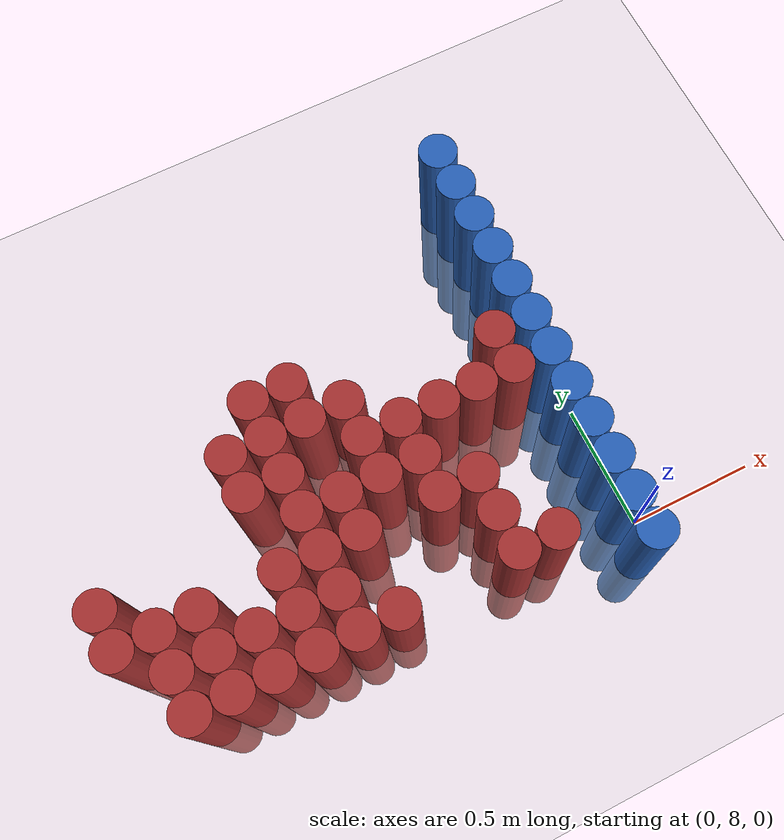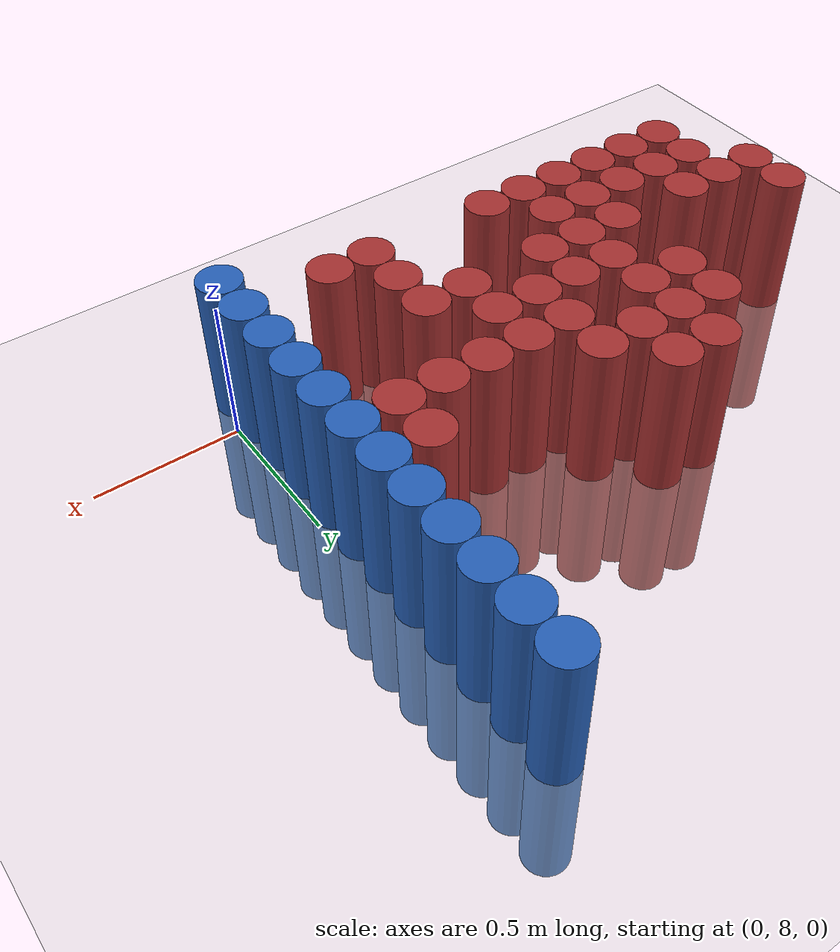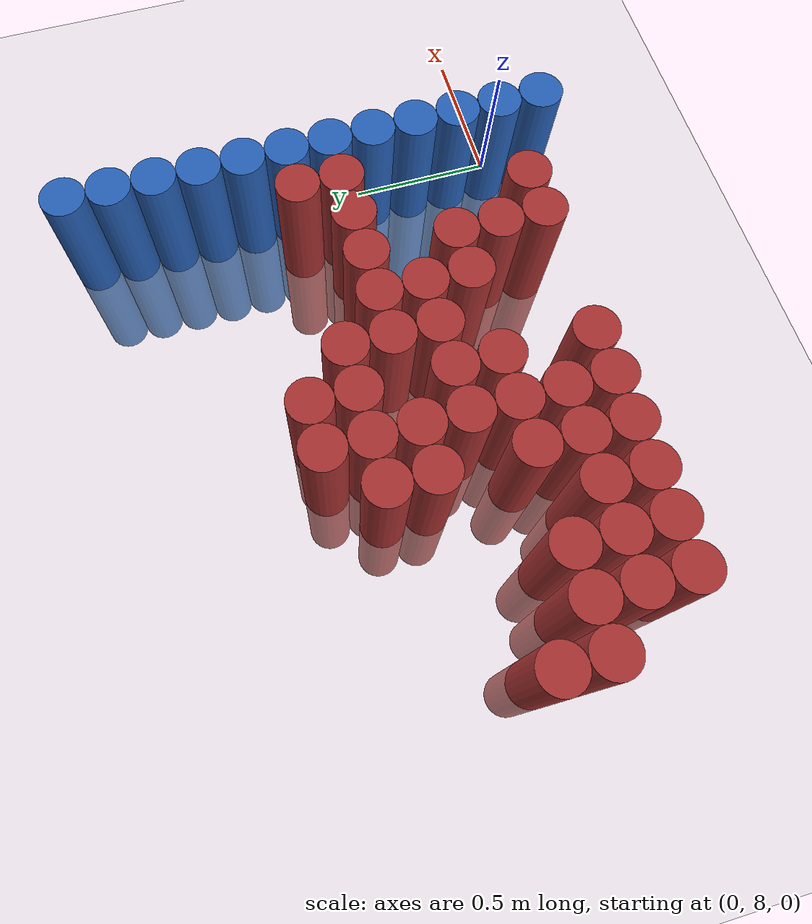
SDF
<sdf version="1.6">
 <world name="default">
  <model name="ground_plane">
   <static>1</static>
   <link name="link">
    <collision name="collision">
     <geometry><plane><normal>0 0 1</normal><size>100 100</size></plane></geometry>
     <surface><friction><ode><mu>100</mu><mu2>50</mu2></ode></friction></surface>
    </collision>
    <visual name="visual">
     <cast_shadows>0</cast_shadows>
     <geometry><plane><normal>0 0 1</normal><size>100 100</size></plane></geometry>
     <material>
      <script><uri>file://media/materials/scripts/gazebo.material</uri><name>Gazebo/Grey</name></script>
     </material>
    </visual>
   </link>
  </model>
  <model name="unit_cylinder_232">
   <static>1</static>
   <pose>-1.875000 8.325000 0.000000 0.000000 0.000000 0.000000</pose>
   <link name="link">
    <inertial>
     <mass>1</mass>
     <inertia><ixx>0.145833</ixx><ixy>0</ixy><ixz>0</ixz><iyy>0.145833</iyy><iyz>0</iyz><izz>0.125</izz></inertia>
    </inertial>
    <collision name="collision">
     <geometry><cylinder><radius>0.075000</radius><length>1</length></cylinder></geometry>
    </collision>
    <visual name="visual">
     <geometry><cylinder><radius>0.075000</radius><length>1</length></cylinder></geometry>
     <material>
      <ambient>0.648000 0.192000 0.192000 1</ambient>
      <diffuse>0.648000 0.192000 0.192000 1</diffuse>
     </material>
     <material>
      <script><name>Gazebo/Grey</name><uri>file://media/materials/scripts/gazebo.material</uri></script>
     </material>
    </visual>
   </link>
  </model>
  <model name="unit_cylinder_233">
   <static>1</static>
   <pose>-1.875000 8.475000 0.000000 0.000000 0.000000 0.000000</pose>
   <link name="link">
    <inertial>
     <mass>1</mass>
     <inertia><ixx>0.145833</ixx><ixy>0</ixy><ixz>0</ixz><iyy>0.145833</iyy><iyz>0</iyz><izz>0.125</izz></inertia>
    </inertial>
    <collision name="collision">
     <geometry><cylinder><radius>0.075000</radius><length>1</length></cylinder></geometry>
    </collision>
    <visual name="visual">
     <geometry><cylinder><radius>0.075000</radius><length>1</length></cylinder></geometry>
     <material>
      <ambient>0.648000 0.192000 0.192000 1</ambient>
      <diffuse>0.648000 0.192000 0.192000 1</diffuse>
     </material>
     <material>
      <script><name>Gazebo/Grey</name><uri>file://media/materials/scripts/gazebo.material</uri></script>
     </material>
    </visual>
   </link>
  </model>
  <model name="unit_cylinder_238">
   <static>1</static>
   <pose>-1.725000 8.025000 0.000000 0.000000 0.000000 0.000000</pose>
   <link name="link">
    <inertial>
     <mass>1</mass>
     <inertia><ixx>0.145833</ixx><ixy>0</ixy><ixz>0</ixz><iyy>0.145833</iyy><iyz>0</iyz><izz>0.125</izz></inertia>
    </inertial>
    <collision name="collision">
     <geometry><cylinder><radius>0.075000</radius><length>1</length></cylinder></geometry>
    </collision>
    <visual name="visual">
     <geometry><cylinder><radius>0.075000</radius><length>1</length></cylinder></geometry>
     <material>
      <ambient>0.648000 0.192000 0.192000 1</ambient>
      <diffuse>0.648000 0.192000 0.192000 1</diffuse>
     </material>
     <material>
      <script><name>Gazebo/Grey</name><uri>file://media/materials/scripts/gazebo.material</uri></script>
     </material>
    </visual>
   </link>
  </model>
  <model name="unit_cylinder_239">
   <static>1</static>
   <pose>-1.725000 8.175000 0.000000 0.000000 0.000000 0.000000</pose>
   <link name="link">
    <inertial>
     <mass>1</mass>
     <inertia><ixx>0.145833</ixx><ixy>0</ixy><ixz>0</ixz><iyy>0.145833</iyy><iyz>0</iyz><izz>0.125</izz></inertia>
    </inertial>
    <collision name="collision">
     <geometry><cylinder><radius>0.075000</radius><length>1</length></cylinder></geometry>
    </collision>
    <visual name="visual">
     <geometry><cylinder><radius>0.075000</radius><length>1</length></cylinder></geometry>
     <material>
      <ambient>0.648000 0.192000 0.192000 1</ambient>
      <diffuse>0.648000 0.192000 0.192000 1</diffuse>
     </material>
     <material>
      <script><name>Gazebo/Grey</name><uri>file://media/materials/scripts/gazebo.material</uri></script>
     </material>
    </visual>
   </link>
  </model>
  <model name="unit_cylinder_240">
   <static>1</static>
   <pose>-1.725000 8.325000 0.000000 0.000000 0.000000 0.000000</pose>
   <link name="link">
    <inertial>
     <mass>1</mass>
     <inertia><ixx>0.145833</ixx><ixy>0</ixy><ixz>0</ixz><iyy>0.145833</iyy><iyz>0</iyz><izz>0.125</izz></inertia>
    </inertial>
    <collision name="collision">
     <geometry><cylinder><radius>0.075000</radius><length>1</length></cylinder></geometry>
    </collision>
    <visual name="visual">
     <geometry><cylinder><radius>0.075000</radius><length>1</length></cylinder></geometry>
     <material>
      <ambient>0.648000 0.192000 0.192000 1</ambient>
      <diffuse>0.648000 0.192000 0.192000 1</diffuse>
     </material>
     <material>
      <script><name>Gazebo/Grey</name><uri>file://media/materials/scripts/gazebo.material</uri></script>
     </material>
    </visual>
   </link>
  </model>
  <model name="unit_cylinder_246">
   <static>1</static>
   <pose>-1.575000 8.025000 0.000000 0.000000 0.000000 0.000000</pose>
   <link name="link">
    <inertial>
     <mass>1</mass>
     <inertia><ixx>0.145833</ixx><ixy>0</ixy><ixz>0</ixz><iyy>0.145833</iyy><iyz>0</iyz><izz>0.125</izz></inertia>
    </inertial>
    <collision name="collision">
     <geometry><cylinder><radius>0.075000</radius><length>1</length></cylinder></geometry>
    </collision>
    <visual name="visual">
     <geometry><cylinder><radius>0.075000</radius><length>1</length></cylinder></geometry>
     <material>
      <ambient>0.648000 0.192000 0.192000 1</ambient>
      <diffuse>0.648000 0.192000 0.192000 1</diffuse>
     </material>
     <material>
      <script><name>Gazebo/Grey</name><uri>file://media/materials/scripts/gazebo.material</uri></script>
     </material>
    </visual>
   </link>
  </model>
  <model name="unit_cylinder_247">
   <static>1</static>
   <pose>-1.575000 8.175000 0.000000 0.000000 0.000000 0.000000</pose>
   <link name="link">
    <inertial>
     <mass>1</mass>
     <inertia><ixx>0.145833</ixx><ixy>0</ixy><ixz>0</ixz><iyy>0.145833</iyy><iyz>0</iyz><izz>0.125</izz></inertia>
    </inertial>
    <collision name="collision">
     <geometry><cylinder><radius>0.075000</radius><length>1</length></cylinder></geometry>
    </collision>
    <visual name="visual">
     <geometry><cylinder><radius>0.075000</radius><length>1</length></cylinder></geometry>
     <material>
      <ambient>0.648000 0.192000 0.192000 1</ambient>
      <diffuse>0.648000 0.192000 0.192000 1</diffuse>
     </material>
     <material>
      <script><name>Gazebo/Grey</name><uri>file://media/materials/scripts/gazebo.material</uri></script>
     </material>
    </visual>
   </link>
  </model>
  <model name="unit_cylinder_248">
   <static>1</static>
   <pose>-1.575000 8.325000 0.000000 0.000000 0.000000 0.000000</pose>
   <link name="link">
    <inertial>
     <mass>1</mass>
     <inertia><ixx>0.145833</ixx><ixy>0</ixy><ixz>0</ixz><iyy>0.145833</iyy><iyz>0</iyz><izz>0.125</izz></inertia>
    </inertial>
    <collision name="collision">
     <geometry><cylinder><radius>0.075000</radius><length>1</length></cylinder></geometry>
    </collision>
    <visual name="visual">
     <geometry><cylinder><radius>0.075000</radius><length>1</length></cylinder></geometry>
     <material>
      <ambient>0.648000 0.192000 0.192000 1</ambient>
      <diffuse>0.648000 0.192000 0.192000 1</diffuse>
     </material>
     <material>
      <script><name>Gazebo/Grey</name><uri>file://media/materials/scripts/gazebo.material</uri></script>
     </material>
    </visual>
   </link>
  </model>
  <model name="unit_cylinder_255">
   <static>1</static>
   <pose>-1.425000 8.025000 0.000000 0.000000 0.000000 0.000000</pose>
   <link name="link">
    <inertial>
     <mass>1</mass>
     <inertia><ixx>0.145833</ixx><ixy>0</ixy><ixz>0</ixz><iyy>0.145833</iyy><iyz>0</iyz><izz>0.125</izz></inertia>
    </inertial>
    <collision name="collision">
     <geometry><cylinder><radius>0.075000</radius><length>1</length></cylinder></geometry>
    </collision>
    <visual name="visual">
     <geometry><cylinder><radius>0.075000</radius><length>1</length></cylinder></geometry>
     <material>
      <ambient>0.648000 0.192000 0.192000 1</ambient>
      <diffuse>0.648000 0.192000 0.192000 1</diffuse>
     </material>
     <material>
      <script><name>Gazebo/Grey</name><uri>file://media/materials/scripts/gazebo.material</uri></script>
     </material>
    </visual>
   </link>
  </model>
  <model name="unit_cylinder_256">
   <static>1</static>
   <pose>-1.425000 8.175000 0.000000 0.000000 0.000000 0.000000</pose>
   <link name="link">
    <inertial>
     <mass>1</mass>
     <inertia><ixx>0.145833</ixx><ixy>0</ixy><ixz>0</ixz><iyy>0.145833</iyy><iyz>0</iyz><izz>0.125</izz></inertia>
    </inertial>
    <collision name="collision">
     <geometry><cylinder><radius>0.075000</radius><length>1</length></cylinder></geometry>
    </collision>
    <visual name="visual">
     <geometry><cylinder><radius>0.075000</radius><length>1</length></cylinder></geometry>
     <material>
      <ambient>0.648000 0.192000 0.192000 1</ambient>
      <diffuse>0.648000 0.192000 0.192000 1</diffuse>
     </material>
     <material>
      <script><name>Gazebo/Grey</name><uri>file://media/materials/scripts/gazebo.material</uri></script>
     </material>
    </visual>
   </link>
  </model>
  <model name="unit_cylinder_264">
   <static>1</static>
   <pose>-1.275000 8.025000 0.000000 0.000000 0.000000 0.000000</pose>
   <link name="link">
    <inertial>
     <mass>1</mass>
     <inertia><ixx>0.145833</ixx><ixy>0</ixy><ixz>0</ixz><iyy>0.145833</iyy><iyz>0</iyz><izz>0.125</izz></inertia>
    </inertial>
    <collision name="collision">
     <geometry><cylinder><radius>0.075000</radius><length>1</length></cylinder></geometry>
    </collision>
    <visual name="visual">
     <geometry><cylinder><radius>0.075000</radius><length>1</length></cylinder></geometry>
     <material>
      <ambient>0.648000 0.192000 0.192000 1</ambient>
      <diffuse>0.648000 0.192000 0.192000 1</diffuse>
     </material>
     <material>
      <script><name>Gazebo/Grey</name><uri>file://media/materials/scripts/gazebo.material</uri></script>
     </material>
    </visual>
   </link>
  </model>
  <model name="unit_cylinder_265">
   <static>1</static>
   <pose>-1.275000 8.175000 0.000000 0.000000 0.000000 0.000000</pose>
   <link name="link">
    <inertial>
     <mass>1</mass>
     <inertia><ixx>0.145833</ixx><ixy>0</ixy><ixz>0</ixz><iyy>0.145833</iyy><iyz>0</iyz><izz>0.125</izz></inertia>
    </inertial>
    <collision name="collision">
     <geometry><cylinder><radius>0.075000</radius><length>1</length></cylinder></geometry>
    </collision>
    <visual name="visual">
     <geometry><cylinder><radius>0.075000</radius><length>1</length></cylinder></geometry>
     <material>
      <ambient>0.648000 0.192000 0.192000 1</ambient>
      <diffuse>0.648000 0.192000 0.192000 1</diffuse>
     </material>
     <material>
      <script><name>Gazebo/Grey</name><uri>file://media/materials/scripts/gazebo.material</uri></script>
     </material>
    </visual>
   </link>
  </model>
  <model name="unit_cylinder_266">
   <static>1</static>
   <pose>-1.275000 8.325000 0.000000 0.000000 0.000000 0.000000</pose>
   <link name="link">
    <inertial>
     <mass>1</mass>
     <inertia><ixx>0.145833</ixx><ixy>0</ixy><ixz>0</ixz><iyy>0.145833</iyy><iyz>0</iyz><izz>0.125</izz></inertia>
    </inertial>
    <collision name="collision">
     <geometry><cylinder><radius>0.075000</radius><length>1</length></cylinder></geometry>
    </collision>
    <visual name="visual">
     <geometry><cylinder><radius>0.075000</radius><length>1</length></cylinder></geometry>
     <material>
      <ambient>0.648000 0.192000 0.192000 1</ambient>
      <diffuse>0.648000 0.192000 0.192000 1</diffuse>
     </material>
     <material>
      <script><name>Gazebo/Grey</name><uri>file://media/materials/scripts/gazebo.material</uri></script>
     </material>
    </visual>
   </link>
  </model>
  <model name="unit_cylinder_267">
   <static>1</static>
   <pose>-1.275000 8.625000 0.000000 0.000000 0.000000 0.000000</pose>
   <link name="link">
    <inertial>
     <mass>1</mass>
     <inertia><ixx>0.145833</ixx><ixy>0</ixy><ixz>0</ixz><iyy>0.145833</iyy><iyz>0</iyz><izz>0.125</izz></inertia>
    </inertial>
    <collision name="collision">
     <geometry><cylinder><radius>0.075000</radius><length>1</length></cylinder></geometry>
    </collision>
    <visual name="visual">
     <geometry><cylinder><radius>0.075000</radius><length>1</length></cylinder></geometry>
     <material>
      <ambient>0.648000 0.192000 0.192000 1</ambient>
      <diffuse>0.648000 0.192000 0.192000 1</diffuse>
     </material>
     <material>
      <script><name>Gazebo/Grey</name><uri>file://media/materials/scripts/gazebo.material</uri></script>
     </material>
    </visual>
   </link>
  </model>
  <model name="unit_cylinder_268">
   <static>1</static>
   <pose>-1.275000 8.775000 0.000000 0.000000 0.000000 0.000000</pose>
   <link name="link">
    <inertial>
     <mass>1</mass>
     <inertia><ixx>0.145833</ixx><ixy>0</ixy><ixz>0</ixz><iyy>0.145833</iyy><iyz>0</iyz><izz>0.125</izz></inertia>
    </inertial>
    <collision name="collision">
     <geometry><cylinder><radius>0.075000</radius><length>1</length></cylinder></geometry>
    </collision>
    <visual name="visual">
     <geometry><cylinder><radius>0.075000</radius><length>1</length></cylinder></geometry>
     <material>
      <ambient>0.648000 0.192000 0.192000 1</ambient>
      <diffuse>0.648000 0.192000 0.192000 1</diffuse>
     </material>
     <material>
      <script><name>Gazebo/Grey</name><uri>file://media/materials/scripts/gazebo.material</uri></script>
     </material>
    </visual>
   </link>
  </model>
  <model name="unit_cylinder_276">
   <static>1</static>
   <pose>-1.125000 8.025000 0.000000 0.000000 0.000000 0.000000</pose>
   <link name="link">
    <inertial>
     <mass>1</mass>
     <inertia><ixx>0.145833</ixx><ixy>0</ixy><ixz>0</ixz><iyy>0.145833</iyy><iyz>0</iyz><izz>0.125</izz></inertia>
    </inertial>
    <collision name="collision">
     <geometry><cylinder><radius>0.075000</radius><length>1</length></cylinder></geometry>
    </collision>
    <visual name="visual">
     <geometry><cylinder><radius>0.075000</radius><length>1</length></cylinder></geometry>
     <material>
      <ambient>0.648000 0.192000 0.192000 1</ambient>
      <diffuse>0.648000 0.192000 0.192000 1</diffuse>
     </material>
     <material>
      <script><name>Gazebo/Grey</name><uri>file://media/materials/scripts/gazebo.material</uri></script>
     </material>
    </visual>
   </link>
  </model>
  <model name="unit_cylinder_277">
   <static>1</static>
   <pose>-1.125000 8.175000 0.000000 0.000000 0.000000 0.000000</pose>
   <link name="link">
    <inertial>
     <mass>1</mass>
     <inertia><ixx>0.145833</ixx><ixy>0</ixy><ixz>0</ixz><iyy>0.145833</iyy><iyz>0</iyz><izz>0.125</izz></inertia>
    </inertial>
    <collision name="collision">
     <geometry><cylinder><radius>0.075000</radius><length>1</length></cylinder></geometry>
    </collision>
    <visual name="visual">
     <geometry><cylinder><radius>0.075000</radius><length>1</length></cylinder></geometry>
     <material>
      <ambient>0.648000 0.192000 0.192000 1</ambient>
      <diffuse>0.648000 0.192000 0.192000 1</diffuse>
     </material>
     <material>
      <script><name>Gazebo/Grey</name><uri>file://media/materials/scripts/gazebo.material</uri></script>
     </material>
    </visual>
   </link>
  </model>
  <model name="unit_cylinder_278">
   <static>1</static>
   <pose>-1.125000 8.325000 0.000000 0.000000 0.000000 0.000000</pose>
   <link name="link">
    <inertial>
     <mass>1</mass>
     <inertia><ixx>0.145833</ixx><ixy>0</ixy><ixz>0</ixz><iyy>0.145833</iyy><iyz>0</iyz><izz>0.125</izz></inertia>
    </inertial>
    <collision name="collision">
     <geometry><cylinder><radius>0.075000</radius><length>1</length></cylinder></geometry>
    </collision>
    <visual name="visual">
     <geometry><cylinder><radius>0.075000</radius><length>1</length></cylinder></geometry>
     <material>
      <ambient>0.648000 0.192000 0.192000 1</ambient>
      <diffuse>0.648000 0.192000 0.192000 1</diffuse>
     </material>
     <material>
      <script><name>Gazebo/Grey</name><uri>file://media/materials/scripts/gazebo.material</uri></script>
     </material>
    </visual>
   </link>
  </model>
  <model name="unit_cylinder_279">
   <static>1</static>
   <pose>-1.125000 8.475000 0.000000 0.000000 0.000000 0.000000</pose>
   <link name="link">
    <inertial>
     <mass>1</mass>
     <inertia><ixx>0.145833</ixx><ixy>0</ixy><ixz>0</ixz><iyy>0.145833</iyy><iyz>0</iyz><izz>0.125</izz></inertia>
    </inertial>
    <collision name="collision">
     <geometry><cylinder><radius>0.075000</radius><length>1</length></cylinder></geometry>
    </collision>
    <visual name="visual">
     <geometry><cylinder><radius>0.075000</radius><length>1</length></cylinder></geometry>
     <material>
      <ambient>0.648000 0.192000 0.192000 1</ambient>
      <diffuse>0.648000 0.192000 0.192000 1</diffuse>
     </material>
     <material>
      <script><name>Gazebo/Grey</name><uri>file://media/materials/scripts/gazebo.material</uri></script>
     </material>
    </visual>
   </link>
  </model>
  <model name="unit_cylinder_280">
   <static>1</static>
   <pose>-1.125000 8.625000 0.000000 0.000000 0.000000 0.000000</pose>
   <link name="link">
    <inertial>
     <mass>1</mass>
     <inertia><ixx>0.145833</ixx><ixy>0</ixy><ixz>0</ixz><iyy>0.145833</iyy><iyz>0</iyz><izz>0.125</izz></inertia>
    </inertial>
    <collision name="collision">
     <geometry><cylinder><radius>0.075000</radius><length>1</length></cylinder></geometry>
    </collision>
    <visual name="visual">
     <geometry><cylinder><radius>0.075000</radius><length>1</length></cylinder></geometry>
     <material>
      <ambient>0.648000 0.192000 0.192000 1</ambient>
      <diffuse>0.648000 0.192000 0.192000 1</diffuse>
     </material>
     <material>
      <script><name>Gazebo/Grey</name><uri>file://media/materials/scripts/gazebo.material</uri></script>
     </material>
    </visual>
   </link>
  </model>
  <model name="unit_cylinder_281">
   <static>1</static>
   <pose>-1.125000 8.775000 0.000000 0.000000 0.000000 0.000000</pose>
   <link name="link">
    <inertial>
     <mass>1</mass>
     <inertia><ixx>0.145833</ixx><ixy>0</ixy><ixz>0</ixz><iyy>0.145833</iyy><iyz>0</iyz><izz>0.125</izz></inertia>
    </inertial>
    <collision name="collision">
     <geometry><cylinder><radius>0.075000</radius><length>1</length></cylinder></geometry>
    </collision>
    <visual name="visual">
     <geometry><cylinder><radius>0.075000</radius><length>1</length></cylinder></geometry>
     <material>
      <ambient>0.648000 0.192000 0.192000 1</ambient>
      <diffuse>0.648000 0.192000 0.192000 1</diffuse>
     </material>
     <material>
      <script><name>Gazebo/Grey</name><uri>file://media/materials/scripts/gazebo.material</uri></script>
     </material>
    </visual>
   </link>
  </model>
  <model name="unit_cylinder_282">
   <static>1</static>
   <pose>-1.125000 8.925000 0.000000 0.000000 0.000000 0.000000</pose>
   <link name="link">
    <inertial>
     <mass>1</mass>
     <inertia><ixx>0.145833</ixx><ixy>0</ixy><ixz>0</ixz><iyy>0.145833</iyy><iyz>0</iyz><izz>0.125</izz></inertia>
    </inertial>
    <collision name="collision">
     <geometry><cylinder><radius>0.075000</radius><length>1</length></cylinder></geometry>
    </collision>
    <visual name="visual">
     <geometry><cylinder><radius>0.075000</radius><length>1</length></cylinder></geometry>
     <material>
      <ambient>0.648000 0.192000 0.192000 1</ambient>
      <diffuse>0.648000 0.192000 0.192000 1</diffuse>
     </material>
     <material>
      <script><name>Gazebo/Grey</name><uri>file://media/materials/scripts/gazebo.material</uri></script>
     </material>
    </visual>
   </link>
  </model>
  <model name="unit_cylinder_289">
   <static>1</static>
   <pose>-0.975000 8.025000 0.000000 0.000000 0.000000 0.000000</pose>
   <link name="link">
    <inertial>
     <mass>1</mass>
     <inertia><ixx>0.145833</ixx><ixy>0</ixy><ixz>0</ixz><iyy>0.145833</iyy><iyz>0</iyz><izz>0.125</izz></inertia>
    </inertial>
    <collision name="collision">
     <geometry><cylinder><radius>0.075000</radius><length>1</length></cylinder></geometry>
    </collision>
    <visual name="visual">
     <geometry><cylinder><radius>0.075000</radius><length>1</length></cylinder></geometry>
     <material>
      <ambient>0.648000 0.192000 0.192000 1</ambient>
      <diffuse>0.648000 0.192000 0.192000 1</diffuse>
     </material>
     <material>
      <script><name>Gazebo/Grey</name><uri>file://media/materials/scripts/gazebo.material</uri></script>
     </material>
    </visual>
   </link>
  </model>
  <model name="unit_cylinder_290">
   <static>1</static>
   <pose>-0.975000 8.325000 0.000000 0.000000 0.000000 0.000000</pose>
   <link name="link">
    <inertial>
     <mass>1</mass>
     <inertia><ixx>0.145833</ixx><ixy>0</ixy><ixz>0</ixz><iyy>0.145833</iyy><iyz>0</iyz><izz>0.125</izz></inertia>
    </inertial>
    <collision name="collision">
     <geometry><cylinder><radius>0.075000</radius><length>1</length></cylinder></geometry>
    </collision>
    <visual name="visual">
     <geometry><cylinder><radius>0.075000</radius><length>1</length></cylinder></geometry>
     <material>
      <ambient>0.648000 0.192000 0.192000 1</ambient>
      <diffuse>0.648000 0.192000 0.192000 1</diffuse>
     </material>
     <material>
      <script><name>Gazebo/Grey</name><uri>file://media/materials/scripts/gazebo.material</uri></script>
     </material>
    </visual>
   </link>
  </model>
  <model name="unit_cylinder_291">
   <static>1</static>
   <pose>-0.975000 8.475000 0.000000 0.000000 0.000000 0.000000</pose>
   <link name="link">
    <inertial>
     <mass>1</mass>
     <inertia><ixx>0.145833</ixx><ixy>0</ixy><ixz>0</ixz><iyy>0.145833</iyy><iyz>0</iyz><izz>0.125</izz></inertia>
    </inertial>
    <collision name="collision">
     <geometry><cylinder><radius>0.075000</radius><length>1</length></cylinder></geometry>
    </collision>
    <visual name="visual">
     <geometry><cylinder><radius>0.075000</radius><length>1</length></cylinder></geometry>
     <material>
      <ambient>0.648000 0.192000 0.192000 1</ambient>
      <diffuse>0.648000 0.192000 0.192000 1</diffuse>
     </material>
     <material>
      <script><name>Gazebo/Grey</name><uri>file://media/materials/scripts/gazebo.material</uri></script>
     </material>
    </visual>
   </link>
  </model>
  <model name="unit_cylinder_292">
   <static>1</static>
   <pose>-0.975000 8.775000 0.000000 0.000000 0.000000 0.000000</pose>
   <link name="link">
    <inertial>
     <mass>1</mass>
     <inertia><ixx>0.145833</ixx><ixy>0</ixy><ixz>0</ixz><iyy>0.145833</iyy><iyz>0</iyz><izz>0.125</izz></inertia>
    </inertial>
    <collision name="collision">
     <geometry><cylinder><radius>0.075000</radius><length>1</length></cylinder></geometry>
    </collision>
    <visual name="visual">
     <geometry><cylinder><radius>0.075000</radius><length>1</length></cylinder></geometry>
     <material>
      <ambient>0.648000 0.192000 0.192000 1</ambient>
      <diffuse>0.648000 0.192000 0.192000 1</diffuse>
     </material>
     <material>
      <script><name>Gazebo/Grey</name><uri>file://media/materials/scripts/gazebo.material</uri></script>
     </material>
    </visual>
   </link>
  </model>
  <model name="unit_cylinder_293">
   <static>1</static>
   <pose>-0.975000 8.925000 0.000000 0.000000 0.000000 0.000000</pose>
   <link name="link">
    <inertial>
     <mass>1</mass>
     <inertia><ixx>0.145833</ixx><ixy>0</ixy><ixz>0</ixz><iyy>0.145833</iyy><iyz>0</iyz><izz>0.125</izz></inertia>
    </inertial>
    <collision name="collision">
     <geometry><cylinder><radius>0.075000</radius><length>1</length></cylinder></geometry>
    </collision>
    <visual name="visual">
     <geometry><cylinder><radius>0.075000</radius><length>1</length></cylinder></geometry>
     <material>
      <ambient>0.648000 0.192000 0.192000 1</ambient>
      <diffuse>0.648000 0.192000 0.192000 1</diffuse>
     </material>
     <material>
      <script><name>Gazebo/Grey</name><uri>file://media/materials/scripts/gazebo.material</uri></script>
     </material>
    </visual>
   </link>
  </model>
  <model name="unit_cylinder_299">
   <static>1</static>
   <pose>-0.825000 8.475000 0.000000 0.000000 0.000000 0.000000</pose>
   <link name="link">
    <inertial>
     <mass>1</mass>
     <inertia><ixx>0.145833</ixx><ixy>0</ixy><ixz>0</ixz><iyy>0.145833</iyy><iyz>0</iyz><izz>0.125</izz></inertia>
    </inertial>
    <collision name="collision">
     <geometry><cylinder><radius>0.075000</radius><length>1</length></cylinder></geometry>
    </collision>
    <visual name="visual">
     <geometry><cylinder><radius>0.075000</radius><length>1</length></cylinder></geometry>
     <material>
      <ambient>0.648000 0.192000 0.192000 1</ambient>
      <diffuse>0.648000 0.192000 0.192000 1</diffuse>
     </material>
     <material>
      <script><name>Gazebo/Grey</name><uri>file://media/materials/scripts/gazebo.material</uri></script>
     </material>
    </visual>
   </link>
  </model>
  <model name="unit_cylinder_300">
   <static>1</static>
   <pose>-0.825000 8.625000 0.000000 0.000000 0.000000 0.000000</pose>
   <link name="link">
    <inertial>
     <mass>1</mass>
     <inertia><ixx>0.145833</ixx><ixy>0</ixy><ixz>0</ixz><iyy>0.145833</iyy><iyz>0</iyz><izz>0.125</izz></inertia>
    </inertial>
    <collision name="collision">
     <geometry><cylinder><radius>0.075000</radius><length>1</length></cylinder></geometry>
    </collision>
    <visual name="visual">
     <geometry><cylinder><radius>0.075000</radius><length>1</length></cylinder></geometry>
     <material>
      <ambient>0.648000 0.192000 0.192000 1</ambient>
      <diffuse>0.648000 0.192000 0.192000 1</diffuse>
     </material>
     <material>
      <script><name>Gazebo/Grey</name><uri>file://media/materials/scripts/gazebo.material</uri></script>
     </material>
    </visual>
   </link>
  </model>
  <model name="unit_cylinder_301">
   <static>1</static>
   <pose>-0.825000 8.775000 0.000000 0.000000 0.000000 0.000000</pose>
   <link name="link">
    <inertial>
     <mass>1</mass>
     <inertia><ixx>0.145833</ixx><ixy>0</ixy><ixz>0</ixz><iyy>0.145833</iyy><iyz>0</iyz><izz>0.125</izz></inertia>
    </inertial>
    <collision name="collision">
     <geometry><cylinder><radius>0.075000</radius><length>1</length></cylinder></geometry>
    </collision>
    <visual name="visual">
     <geometry><cylinder><radius>0.075000</radius><length>1</length></cylinder></geometry>
     <material>
      <ambient>0.648000 0.192000 0.192000 1</ambient>
      <diffuse>0.648000 0.192000 0.192000 1</diffuse>
     </material>
     <material>
      <script><name>Gazebo/Grey</name><uri>file://media/materials/scripts/gazebo.material</uri></script>
     </material>
    </visual>
   </link>
  </model>
  <model name="unit_cylinder_306">
   <static>1</static>
   <pose>-0.675000 8.325000 0.000000 0.000000 0.000000 0.000000</pose>
   <link name="link">
    <inertial>
     <mass>1</mass>
     <inertia><ixx>0.145833</ixx><ixy>0</ixy><ixz>0</ixz><iyy>0.145833</iyy><iyz>0</iyz><izz>0.125</izz></inertia>
    </inertial>
    <collision name="collision">
     <geometry><cylinder><radius>0.075000</radius><length>1</length></cylinder></geometry>
    </collision>
    <visual name="visual">
     <geometry><cylinder><radius>0.075000</radius><length>1</length></cylinder></geometry>
     <material>
      <ambient>0.648000 0.192000 0.192000 1</ambient>
      <diffuse>0.648000 0.192000 0.192000 1</diffuse>
     </material>
     <material>
      <script><name>Gazebo/Grey</name><uri>file://media/materials/scripts/gazebo.material</uri></script>
     </material>
    </visual>
   </link>
  </model>
  <model name="unit_cylinder_307">
   <static>1</static>
   <pose>-0.675000 8.475000 0.000000 0.000000 0.000000 0.000000</pose>
   <link name="link">
    <inertial>
     <mass>1</mass>
     <inertia><ixx>0.145833</ixx><ixy>0</ixy><ixz>0</ixz><iyy>0.145833</iyy><iyz>0</iyz><izz>0.125</izz></inertia>
    </inertial>
    <collision name="collision">
     <geometry><cylinder><radius>0.075000</radius><length>1</length></cylinder></geometry>
    </collision>
    <visual name="visual">
     <geometry><cylinder><radius>0.075000</radius><length>1</length></cylinder></geometry>
     <material>
      <ambient>0.648000 0.192000 0.192000 1</ambient>
      <diffuse>0.648000 0.192000 0.192000 1</diffuse>
     </material>
     <material>
      <script><name>Gazebo/Grey</name><uri>file://media/materials/scripts/gazebo.material</uri></script>
     </material>
    </visual>
   </link>
  </model>
  <model name="unit_cylinder_308">
   <static>1</static>
   <pose>-0.675000 8.625000 0.000000 0.000000 0.000000 0.000000</pose>
   <link name="link">
    <inertial>
     <mass>1</mass>
     <inertia><ixx>0.145833</ixx><ixy>0</ixy><ixz>0</ixz><iyy>0.145833</iyy><iyz>0</iyz><izz>0.125</izz></inertia>
    </inertial>
    <collision name="collision">
     <geometry><cylinder><radius>0.075000</radius><length>1</length></cylinder></geometry>
    </collision>
    <visual name="visual">
     <geometry><cylinder><radius>0.075000</radius><length>1</length></cylinder></geometry>
     <material>
      <ambient>0.648000 0.192000 0.192000 1</ambient>
      <diffuse>0.648000 0.192000 0.192000 1</diffuse>
     </material>
     <material>
      <script><name>Gazebo/Grey</name><uri>file://media/materials/scripts/gazebo.material</uri></script>
     </material>
    </visual>
   </link>
  </model>
  <model name="unit_cylinder_313">
   <static>1</static>
   <pose>-0.525000 8.025000 0.000000 0.000000 0.000000 0.000000</pose>
   <link name="link">
    <inertial>
     <mass>1</mass>
     <inertia><ixx>0.145833</ixx><ixy>0</ixy><ixz>0</ixz><iyy>0.145833</iyy><iyz>0</iyz><izz>0.125</izz></inertia>
    </inertial>
    <collision name="collision">
     <geometry><cylinder><radius>0.075000</radius><length>1</length></cylinder></geometry>
    </collision>
    <visual name="visual">
     <geometry><cylinder><radius>0.075000</radius><length>1</length></cylinder></geometry>
     <material>
      <ambient>0.648000 0.192000 0.192000 1</ambient>
      <diffuse>0.648000 0.192000 0.192000 1</diffuse>
     </material>
     <material>
      <script><name>Gazebo/Grey</name><uri>file://media/materials/scripts/gazebo.material</uri></script>
     </material>
    </visual>
   </link>
  </model>
  <model name="unit_cylinder_314">
   <static>1</static>
   <pose>-0.525000 8.175000 0.000000 0.000000 0.000000 0.000000</pose>
   <link name="link">
    <inertial>
     <mass>1</mass>
     <inertia><ixx>0.145833</ixx><ixy>0</ixy><ixz>0</ixz><iyy>0.145833</iyy><iyz>0</iyz><izz>0.125</izz></inertia>
    </inertial>
    <collision name="collision">
     <geometry><cylinder><radius>0.075000</radius><length>1</length></cylinder></geometry>
    </collision>
    <visual name="visual">
     <geometry><cylinder><radius>0.075000</radius><length>1</length></cylinder></geometry>
     <material>
      <ambient>0.648000 0.192000 0.192000 1</ambient>
      <diffuse>0.648000 0.192000 0.192000 1</diffuse>
     </material>
     <material>
      <script><name>Gazebo/Grey</name><uri>file://media/materials/scripts/gazebo.material</uri></script>
     </material>
    </visual>
   </link>
  </model>
  <model name="unit_cylinder_315">
   <static>1</static>
   <pose>-0.525000 8.325000 0.000000 0.000000 0.000000 0.000000</pose>
   <link name="link">
    <inertial>
     <mass>1</mass>
     <inertia><ixx>0.145833</ixx><ixy>0</ixy><ixz>0</ixz><iyy>0.145833</iyy><iyz>0</iyz><izz>0.125</izz></inertia>
    </inertial>
    <collision name="collision">
     <geometry><cylinder><radius>0.075000</radius><length>1</length></cylinder></geometry>
    </collision>
    <visual name="visual">
     <geometry><cylinder><radius>0.075000</radius><length>1</length></cylinder></geometry>
     <material>
      <ambient>0.648000 0.192000 0.192000 1</ambient>
      <diffuse>0.648000 0.192000 0.192000 1</diffuse>
     </material>
     <material>
      <script><name>Gazebo/Grey</name><uri>file://media/materials/scripts/gazebo.material</uri></script>
     </material>
    </visual>
   </link>
  </model>
  <model name="unit_cylinder_316">
   <static>1</static>
   <pose>-0.525000 8.625000 0.000000 0.000000 0.000000 0.000000</pose>
   <link name="link">
    <inertial>
     <mass>1</mass>
     <inertia><ixx>0.145833</ixx><ixy>0</ixy><ixz>0</ixz><iyy>0.145833</iyy><iyz>0</iyz><izz>0.125</izz></inertia>
    </inertial>
    <collision name="collision">
     <geometry><cylinder><radius>0.075000</radius><length>1</length></cylinder></geometry>
    </collision>
    <visual name="visual">
     <geometry><cylinder><radius>0.075000</radius><length>1</length></cylinder></geometry>
     <material>
      <ambient>0.648000 0.192000 0.192000 1</ambient>
      <diffuse>0.648000 0.192000 0.192000 1</diffuse>
     </material>
     <material>
      <script><name>Gazebo/Grey</name><uri>file://media/materials/scripts/gazebo.material</uri></script>
     </material>
    </visual>
   </link>
  </model>
  <model name="unit_cylinder_323">
   <static>1</static>
   <pose>-0.375000 8.025000 0.000000 0.000000 0.000000 0.000000</pose>
   <link name="link">
    <inertial>
     <mass>1</mass>
     <inertia><ixx>0.145833</ixx><ixy>0</ixy><ixz>0</ixz><iyy>0.145833</iyy><iyz>0</iyz><izz>0.125</izz></inertia>
    </inertial>
    <collision name="collision">
     <geometry><cylinder><radius>0.075000</radius><length>1</length></cylinder></geometry>
    </collision>
    <visual name="visual">
     <geometry><cylinder><radius>0.075000</radius><length>1</length></cylinder></geometry>
     <material>
      <ambient>0.648000 0.192000 0.192000 1</ambient>
      <diffuse>0.648000 0.192000 0.192000 1</diffuse>
     </material>
     <material>
      <script><name>Gazebo/Grey</name><uri>file://media/materials/scripts/gazebo.material</uri></script>
     </material>
    </visual>
   </link>
  </model>
  <model name="unit_cylinder_324">
   <static>1</static>
   <pose>-0.375000 8.625000 0.000000 0.000000 0.000000 0.000000</pose>
   <link name="link">
    <inertial>
     <mass>1</mass>
     <inertia><ixx>0.145833</ixx><ixy>0</ixy><ixz>0</ixz><iyy>0.145833</iyy><iyz>0</iyz><izz>0.125</izz></inertia>
    </inertial>
    <collision name="collision">
     <geometry><cylinder><radius>0.075000</radius><length>1</length></cylinder></geometry>
    </collision>
    <visual name="visual">
     <geometry><cylinder><radius>0.075000</radius><length>1</length></cylinder></geometry>
     <material>
      <ambient>0.648000 0.192000 0.192000 1</ambient>
      <diffuse>0.648000 0.192000 0.192000 1</diffuse>
     </material>
     <material>
      <script><name>Gazebo/Grey</name><uri>file://media/materials/scripts/gazebo.material</uri></script>
     </material>
    </visual>
   </link>
  </model>
  <model name="unit_cylinder_334">
   <static>1</static>
   <pose>-0.225000 8.625000 0.000000 0.000000 0.000000 0.000000</pose>
   <link name="link">
    <inertial>
     <mass>1</mass>
     <inertia><ixx>0.145833</ixx><ixy>0</ixy><ixz>0</ixz><iyy>0.145833</iyy><iyz>0</iyz><izz>0.125</izz></inertia>
    </inertial>
    <collision name="collision">
     <geometry><cylinder><radius>0.075000</radius><length>1</length></cylinder></geometry>
    </collision>
    <visual name="visual">
     <geometry><cylinder><radius>0.075000</radius><length>1</length></cylinder></geometry>
     <material>
      <ambient>0.648000 0.192000 0.192000 1</ambient>
      <diffuse>0.648000 0.192000 0.192000 1</diffuse>
     </material>
     <material>
      <script><name>Gazebo/Grey</name><uri>file://media/materials/scripts/gazebo.material</uri></script>
     </material>
    </visual>
   </link>
  </model>
  <model name="unit_cylinder_335">
   <static>1</static>
   <pose>-0.225000 8.775000 0.000000 0.000000 0.000000 0.000000</pose>
   <link name="link">
    <inertial>
     <mass>1</mass>
     <inertia><ixx>0.145833</ixx><ixy>0</ixy><ixz>0</ixz><iyy>0.145833</iyy><iyz>0</iyz><izz>0.125</izz></inertia>
    </inertial>
    <collision name="collision">
     <geometry><cylinder><radius>0.075000</radius><length>1</length></cylinder></geometry>
    </collision>
    <visual name="visual">
     <geometry><cylinder><radius>0.075000</radius><length>1</length></cylinder></geometry>
     <material>
      <ambient>0.648000 0.192000 0.192000 1</ambient>
      <diffuse>0.648000 0.192000 0.192000 1</diffuse>
     </material>
     <material>
      <script><name>Gazebo/Grey</name><uri>file://media/materials/scripts/gazebo.material</uri></script>
     </material>
    </visual>
   </link>
  </model>
  <model name="unit_cylinder_354">
   <static>1</static>
   <pose>-0.075000 7.875000 0.000000 0.000000 0.000000 0.000000</pose>
   <link name="link">
    <inertial>
     <mass>1</mass>
     <inertia><ixx>0.145833</ixx><ixy>0</ixy><ixz>0</ixz><iyy>0.145833</iyy><iyz>0</iyz><izz>0.125</izz></inertia>
    </inertial>
    <collision name="collision">
     <geometry><cylinder><radius>0.075000</radius><length>1</length></cylinder></geometry>
    </collision>
    <visual name="visual">
     <geometry><cylinder><radius>0.075000</radius><length>1</length></cylinder></geometry>
     <material>
      <ambient>0.152000 0.379000 0.720000 1</ambient>
      <diffuse>0.152000 0.379000 0.720000 1</diffuse>
     </material>
     <material>
      <script><name>Gazebo/Grey</name><uri>file://media/materials/scripts/gazebo.material</uri></script>
     </material>
    </visual>
   </link>
  </model>
  <model name="unit_cylinder_355">
   <static>1</static>
   <pose>-0.075000 8.025000 0.000000 0.000000 0.000000 0.000000</pose>
   <link name="link">
    <inertial>
     <mass>1</mass>
     <inertia><ixx>0.145833</ixx><ixy>0</ixy><ixz>0</ixz><iyy>0.145833</iyy><iyz>0</iyz><izz>0.125</izz></inertia>
    </inertial>
    <collision name="collision">
     <geometry><cylinder><radius>0.075000</radius><length>1</length></cylinder></geometry>
    </collision>
    <visual name="visual">
     <geometry><cylinder><radius>0.075000</radius><length>1</length></cylinder></geometry>
     <material>
      <ambient>0.152000 0.379000 0.720000 1</ambient>
      <diffuse>0.152000 0.379000 0.720000 1</diffuse>
     </material>
     <material>
      <script><name>Gazebo/Grey</name><uri>file://media/materials/scripts/gazebo.material</uri></script>
     </material>
    </visual>
   </link>
  </model>
  <model name="unit_cylinder_356">
   <static>1</static>
   <pose>-0.075000 8.175000 0.000000 0.000000 0.000000 0.000000</pose>
   <link name="link">
    <inertial>
     <mass>1</mass>
     <inertia><ixx>0.145833</ixx><ixy>0</ixy><ixz>0</ixz><iyy>0.145833</iyy><iyz>0</iyz><izz>0.125</izz></inertia>
    </inertial>
    <collision name="collision">
     <geometry><cylinder><radius>0.075000</radius><length>1</length></cylinder></geometry>
    </collision>
    <visual name="visual">
     <geometry><cylinder><radius>0.075000</radius><length>1</length></cylinder></geometry>
     <material>
      <ambient>0.152000 0.379000 0.720000 1</ambient>
      <diffuse>0.152000 0.379000 0.720000 1</diffuse>
     </material>
     <material>
      <script><name>Gazebo/Grey</name><uri>file://media/materials/scripts/gazebo.material</uri></script>
     </material>
    </visual>
   </link>
  </model>
  <model name="unit_cylinder_357">
   <static>1</static>
   <pose>-0.075000 8.325000 0.000000 0.000000 0.000000 0.000000</pose>
   <link name="link">
    <inertial>
     <mass>1</mass>
     <inertia><ixx>0.145833</ixx><ixy>0</ixy><ixz>0</ixz><iyy>0.145833</iyy><iyz>0</iyz><izz>0.125</izz></inertia>
    </inertial>
    <collision name="collision">
     <geometry><cylinder><radius>0.075000</radius><length>1</length></cylinder></geometry>
    </collision>
    <visual name="visual">
     <geometry><cylinder><radius>0.075000</radius><length>1</length></cylinder></geometry>
     <material>
      <ambient>0.152000 0.379000 0.720000 1</ambient>
      <diffuse>0.152000 0.379000 0.720000 1</diffuse>
     </material>
     <material>
      <script><name>Gazebo/Grey</name><uri>file://media/materials/scripts/gazebo.material</uri></script>
     </material>
    </visual>
   </link>
  </model>
  <model name="unit_cylinder_358">
   <static>1</static>
   <pose>-0.075000 8.475000 0.000000 0.000000 0.000000 0.000000</pose>
   <link name="link">
    <inertial>
     <mass>1</mass>
     <inertia><ixx>0.145833</ixx><ixy>0</ixy><ixz>0</ixz><iyy>0.145833</iyy><iyz>0</iyz><izz>0.125</izz></inertia>
    </inertial>
    <collision name="collision">
     <geometry><cylinder><radius>0.075000</radius><length>1</length></cylinder></geometry>
    </collision>
    <visual name="visual">
     <geometry><cylinder><radius>0.075000</radius><length>1</length></cylinder></geometry>
     <material>
      <ambient>0.152000 0.379000 0.720000 1</ambient>
      <diffuse>0.152000 0.379000 0.720000 1</diffuse>
     </material>
     <material>
      <script><name>Gazebo/Grey</name><uri>file://media/materials/scripts/gazebo.material</uri></script>
     </material>
    </visual>
   </link>
  </model>
  <model name="unit_cylinder_359">
   <static>1</static>
   <pose>-0.075000 8.625000 0.000000 0.000000 0.000000 0.000000</pose>
   <link name="link">
    <inertial>
     <mass>1</mass>
     <inertia><ixx>0.145833</ixx><ixy>0</ixy><ixz>0</ixz><iyy>0.145833</iyy><iyz>0</iyz><izz>0.125</izz></inertia>
    </inertial>
    <collision name="collision">
     <geometry><cylinder><radius>0.075000</radius><length>1</length></cylinder></geometry>
    </collision>
    <visual name="visual">
     <geometry><cylinder><radius>0.075000</radius><length>1</length></cylinder></geometry>
     <material>
      <ambient>0.152000 0.379000 0.720000 1</ambient>
      <diffuse>0.152000 0.379000 0.720000 1</diffuse>
     </material>
     <material>
      <script><name>Gazebo/Grey</name><uri>file://media/materials/scripts/gazebo.material</uri></script>
     </material>
    </visual>
   </link>
  </model>
  <model name="unit_cylinder_360">
   <static>1</static>
   <pose>-0.075000 8.775000 0.000000 0.000000 0.000000 0.000000</pose>
   <link name="link">
    <inertial>
     <mass>1</mass>
     <inertia><ixx>0.145833</ixx><ixy>0</ixy><ixz>0</ixz><iyy>0.145833</iyy><iyz>0</iyz><izz>0.125</izz></inertia>
    </inertial>
    <collision name="collision">
     <geometry><cylinder><radius>0.075000</radius><length>1</length></cylinder></geometry>
    </collision>
    <visual name="visual">
     <geometry><cylinder><radius>0.075000</radius><length>1</length></cylinder></geometry>
     <material>
      <ambient>0.152000 0.379000 0.720000 1</ambient>
      <diffuse>0.152000 0.379000 0.720000 1</diffuse>
     </material>
     <material>
      <script><name>Gazebo/Grey</name><uri>file://media/materials/scripts/gazebo.material</uri></script>
     </material>
    </visual>
   </link>
  </model>
  <model name="unit_cylinder_361">
   <static>1</static>
   <pose>-0.075000 8.925000 0.000000 0.000000 0.000000 0.000000</pose>
   <link name="link">
    <inertial>
     <mass>1</mass>
     <inertia><ixx>0.145833</ixx><ixy>0</ixy><ixz>0</ixz><iyy>0.145833</iyy><iyz>0</iyz><izz>0.125</izz></inertia>
    </inertial>
    <collision name="collision">
     <geometry><cylinder><radius>0.075000</radius><length>1</length></cylinder></geometry>
    </collision>
    <visual name="visual">
     <geometry><cylinder><radius>0.075000</radius><length>1</length></cylinder></geometry>
     <material>
      <ambient>0.152000 0.379000 0.720000 1</ambient>
      <diffuse>0.152000 0.379000 0.720000 1</diffuse>
     </material>
     <material>
      <script><name>Gazebo/Grey</name><uri>file://media/materials/scripts/gazebo.material</uri></script>
     </material>
    </visual>
   </link>
  </model>
  <model name="unit_cylinder_362">
   <static>1</static>
   <pose>-0.075000 9.075000 0.000000 0.000000 0.000000 0.000000</pose>
   <link name="link">
    <inertial>
     <mass>1</mass>
     <inertia><ixx>0.145833</ixx><ixy>0</ixy><ixz>0</ixz><iyy>0.145833</iyy><iyz>0</iyz><izz>0.125</izz></inertia>
    </inertial>
    <collision name="collision">
     <geometry><cylinder><radius>0.075000</radius><length>1</length></cylinder></geometry>
    </collision>
    <visual name="visual">
     <geometry><cylinder><radius>0.075000</radius><length>1</length></cylinder></geometry>
     <material>
      <ambient>0.152000 0.379000 0.720000 1</ambient>
      <diffuse>0.152000 0.379000 0.720000 1</diffuse>
     </material>
     <material>
      <script><name>Gazebo/Grey</name><uri>file://media/materials/scripts/gazebo.material</uri></script>
     </material>
    </visual>
   </link>
  </model>
  <model name="unit_cylinder_363">
   <static>1</static>
   <pose>-0.075000 9.225000 0.000000 0.000000 0.000000 0.000000</pose>
   <link name="link">
    <inertial>
     <mass>1</mass>
     <inertia><ixx>0.145833</ixx><ixy>0</ixy><ixz>0</ixz><iyy>0.145833</iyy><iyz>0</iyz><izz>0.125</izz></inertia>
    </inertial>
    <collision name="collision">
     <geometry><cylinder><radius>0.075000</radius><length>1</length></cylinder></geometry>
    </collision>
    <visual name="visual">
     <geometry><cylinder><radius>0.075000</radius><length>1</length></cylinder></geometry>
     <material>
      <ambient>0.152000 0.379000 0.720000 1</ambient>
      <diffuse>0.152000 0.379000 0.720000 1</diffuse>
     </material>
     <material>
      <script><name>Gazebo/Grey</name><uri>file://media/materials/scripts/gazebo.material</uri></script>
     </material>
    </visual>
   </link>
  </model>
  <model name="unit_cylinder_364">
   <static>1</static>
   <pose>-0.075000 9.375000 0.000000 0.000000 0.000000 0.000000</pose>
   <link name="link">
    <inertial>
     <mass>1</mass>
     <inertia><ixx>0.145833</ixx><ixy>0</ixy><ixz>0</ixz><iyy>0.145833</iyy><iyz>0</iyz><izz>0.125</izz></inertia>
    </inertial>
    <collision name="collision">
     <geometry><cylinder><radius>0.075000</radius><length>1</length></cylinder></geometry>
    </collision>
    <visual name="visual">
     <geometry><cylinder><radius>0.075000</radius><length>1</length></cylinder></geometry>
     <material>
      <ambient>0.152000 0.379000 0.720000 1</ambient>
      <diffuse>0.152000 0.379000 0.720000 1</diffuse>
     </material>
     <material>
      <script><name>Gazebo/Grey</name><uri>file://media/materials/scripts/gazebo.material</uri></script>
     </material>
    </visual>
   </link>
  </model>
  <model name="unit_cylinder_365">
   <static>1</static>
   <pose>-0.075000 9.525000 0.000000 0.000000 0.000000 0.000000</pose>
   <link name="link">
    <inertial>
     <mass>1</mass>
     <inertia><ixx>0.145833</ixx><ixy>0</ixy><ixz>0</ixz><iyy>0.145833</iyy><iyz>0</iyz><izz>0.125</izz></inertia>
    </inertial>
    <collision name="collision">
     <geometry><cylinder><radius>0.075000</radius><length>1</length></cylinder></geometry>
    </collision>
    <visual name="visual">
     <geometry><cylinder><radius>0.075000</radius><length>1</length></cylinder></geometry>
     <material>
      <ambient>0.152000 0.379000 0.720000 1</ambient>
      <diffuse>0.152000 0.379000 0.720000 1</diffuse>
     </material>
     <material>
      <script><name>Gazebo/Grey</name><uri>file://media/materials/scripts/gazebo.material</uri></script>
     </material>
    </visual>
   </link>
  </model>
 </world>
</sdf>
